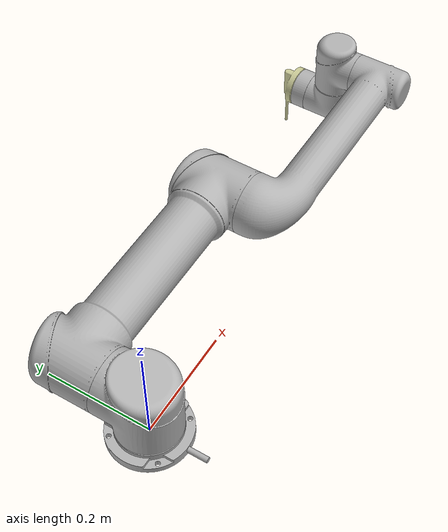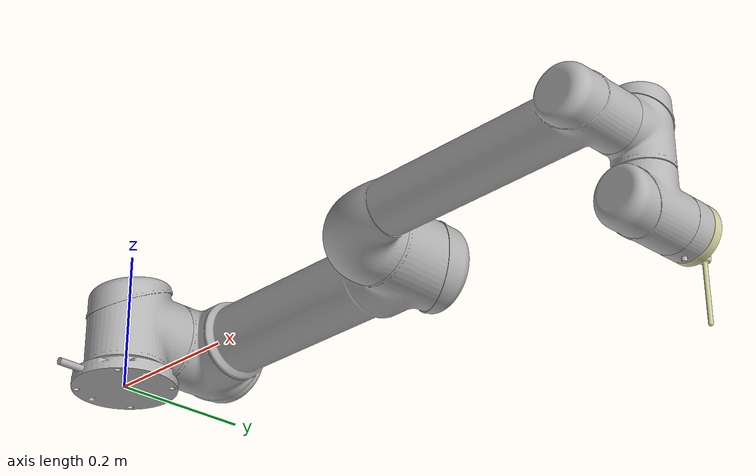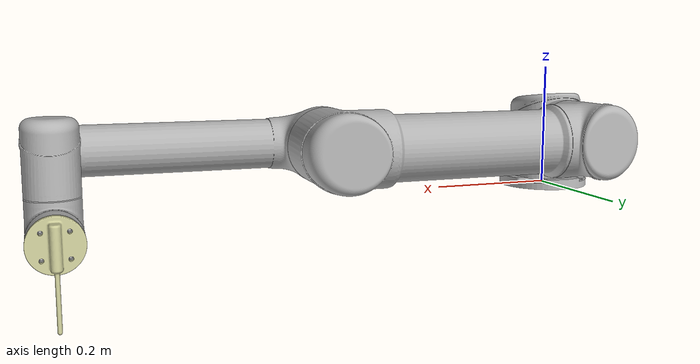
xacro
<?xml version="1.0"?>
<robot xmlns:xacro="http://www.ros.org/wiki/xacro"
       name="ur5_demo" >

  <xacro:property name="PI" value="3.14159265359"/>
  <xacro:property name="flange_radius" value="0.04"/>
  <xacro:property name="flange_offset" value="0.08"/>
  <xacro:property name="tool_tip_width" value="0.005"/>
  <xacro:property name="tool_tip_length" value="0.08"/>
  <xacro:property name="tool_extent_width" value="0.04"/>
  <xacro:property name="tool_extent_length" value="0.02"/>
  <xacro:property name="tool_body_width" value="0.04"/>
  <xacro:property name="tool_body_length" value="0.06"/>
  <xacro:property name="tool_length" value="${0.5*tool_body_length + tool_tip_length}"/>

  <!-- common stuff -->
  <xacro:include filename="$(find ur_description)/urdf/gazebo.urdf.xacro" />

  <!-- ur5 -->
  <xacro:include filename="$(find ur5_demo_support)/urdf/ur5.urdf.xacro" />

  <!-- arm -->
  <xacro:ur5_robot prefix="" joint_limited="true"/>

  <link name="world" />

  <joint name="world_joint" type="fixed">
    <parent link="world" />
    <child link = "base_link" />
    <origin xyz="0.0 0.0 0.0" rpy="0.0 0.0 0.0" />
  </joint>

  <!-- defining tool -->

  <link name="tool">
    <visual>
      <origin xyz="0.0 -0.02 -0.11" rpy="0 0 ${0.5*PI}"/>
      <geometry>
        <mesh filename="package://ur5_demo_support/meshes/stylus_tool.stl"/>
      </geometry>
      <material name="yellow">
        <color rgba="0.8 0.8 0.6 1"/>
      </material>
    </visual>

    <collision>
      <origin xyz="0 0 ${- tool_tip_length - 0.5*tool_body_length}" rpy="0 0 0"/>
      <geometry>
        <box size="${tool_body_width} ${tool_body_width} ${tool_body_length}"/>
      </geometry>
      <material name="yellow">
        <color rgba="1 1 0 1"/>
      </material>
    </collision>
    <collision>
      <origin xyz="0 ${-0.5*tool_extent_length} ${-tool_tip_length - 0.5*tool_body_length}" rpy="${-0.5*PI} 0 0"/>
      <geometry>
        <cylinder radius="${0.5*tool_extent_width}" length="${tool_extent_length}"/>
      </geometry>
      <material name="yellow">
        <color rgba="1 1 0 1"/>
      </material>
    </collision>
    <collision>
      <origin xyz="0 0 ${-0.5 * tool_tip_length}" rpy="0 0 0"/>
      <geometry>
        <cylinder radius="${tool_tip_width}" length="${tool_tip_length}"/>
      </geometry>
      <material name="yellow">
        <color rgba="1 1 0 1"/>
      </material>
    </collision>

  </link>

  <joint name="flange_to_tool" type="fixed">
    <parent link="ee_link"/>
    <child link="tool"/>
    <origin xyz="${tool_extent_length} 0 ${tool_length}" rpy="0 0 ${-0.5*PI}"/>
  </joint>

</robot>

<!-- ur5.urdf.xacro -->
<robot xmlns:xacro="http://www.ros.org/wiki/xacro">

  <xacro:include filename="$(find ur_description)/urdf/ur5.transmission.xacro" />
  <xacro:include filename="$(find ur_description)/urdf/ur5.gazebo.xacro" />

  <property name="pi" value="3.14159265" />

  <!-- Inertia parameters -->
  <property name="base_mass" value="4.0" />  <!-- This mass might be incorrect -->
  <property name="shoulder_mass" value="3.7000" />
  <property name="upper_arm_mass" value="8.3930" />
  <property name="forearm_mass" value="2.2750" />
  <property name="wrist_1_mass" value="1.2190" />
  <property name="wrist_2_mass" value="1.2190" />
  <property name="wrist_3_mass" value="0.1879" />

  <property name="shoulder_cog" value="0.0 0.00193 -0.02561" />
  <property name="upper_arm_cog" value="0.0 -0.024201 0.2125" />
  <property name="forearm_cog" value="0.0 0.0265 0.11993" />
  <property name="wrist_1_cog" value="0.0 0.110949 0.01634" />
  <property name="wrist_2_cog" value="0.0 0.0018 0.11099" />
  <property name="wrist_3_cog" value="0.0 0.001159 0.0" />

  <!-- Kinematic model -->
  <!-- Properties from urcontrol.conf -->
  <property name="ur5_d1" value="0.089159" />
  <property name="ur5_a2" value="-0.42500" />
  <property name="ur5_a3" value="-0.39225" />
  <property name="ur5_d4" value="0.10915" />
  <property name="ur5_d5" value="0.09465" />
  <property name="ur5_d6" value="0.0823" />

  <!-- Arbitrary offsets for shoulder/elbow joints -->
  <property name="shoulder_offset" value="0.13585" />  <!-- measured from model -->
  <property name="elbow_offset" value="-0.1197" /> <!-- measured from model -->

  <!-- link lengths used in model -->
  <property name="shoulder_height" value="${ur5_d1}" />
  <property name="upper_arm_length" value="${-ur5_a2}" />
  <property name="forearm_length" value="${-ur5_a3}" />
  <property name="wrist_1_length" value="${ur5_d4 - elbow_offset - shoulder_offset}" />
  <property name="wrist_2_length" value="${ur5_d5}" />
  <property name="wrist_3_length" value="${ur5_d6}" />
  <!--property name="shoulder_height" value="0.089159" /-->
  <!--property name="shoulder_offset" value="0.13585" /-->  <!-- shoulder_offset - elbow_offset + wrist_1_length = 0.10915 -->
  <!--property name="upper_arm_length" value="0.42500" /-->
  <!--property name="elbow_offset" value="0.1197" /-->       <!-- CAD measured -->
  <!--property name="forearm_length" value="0.39225" /-->
  <!--property name="wrist_1_length" value="0.093" /-->     <!-- CAD measured -->
  <!--property name="wrist_2_length" value="0.09465" /-->   <!-- In CAD this distance is 0.930, but in the spec it is 0.09465 -->
  <!--property name="wrist_3_length" value="0.0823" /-->

  <property name="shoulder_radius" value="0.060" />   <!-- manually measured -->
  <property name="upper_arm_radius" value="0.054" />  <!-- manually measured -->
  <property name="elbow_radius" value="0.060" />      <!-- manually measured -->
  <property name="forearm_radius" value="0.040" />    <!-- manually measured -->
  <property name="wrist_radius" value="0.045" />      <!-- manually measured -->

  <xacro:macro name="cylinder_inertial" params="radius length mass *origin">
    <inertial>
      <mass value="${mass}" />
      <insert_block name="origin" />
      <inertia ixx="${0.0833333 * mass * (3 * radius * radius + length * length)}" ixy="0.0" ixz="0.0"
        iyy="${0.0833333 * mass * (3 * radius * radius + length * length)}" iyz="0.0"
        izz="${0.5 * mass * radius * radius}" />
    </inertial>
  </xacro:macro>

  <xacro:macro name="ur5_robot" params="prefix joint_limited">

    <link name="${prefix}base_link" >
      <visual>
        <geometry>
          <mesh filename="package://ur_description/meshes/ur5/visual/Base.dae" />
        </geometry>
        <material name="LightGrey">
          <color rgba="0.7 0.7 0.7 1.0"/>
        </material>
      </visual>
      <collision>
        <geometry>
          <mesh filename="package://ur_description/meshes/ur5/collision/base.stl" />
        </geometry>
      </collision>
      <xacro:cylinder_inertial radius="0.06" length="0.05" mass="${base_mass}">
        <origin xyz="0.0 0.0 0.0" rpy="0 0 0" />
      </xacro:cylinder_inertial>
    </link>

    <joint name="${prefix}shoulder_pan_joint" type="revolute">
      <parent link="${prefix}base_link" />
      <child link = "${prefix}shoulder_link" />
      <origin xyz="0.0 0.0 ${shoulder_height}" rpy="0.0 0.0 0.0" />
      <axis xyz="0 0 1" />
      <xacro:unless value="${joint_limited}">
        <limit lower="${-2.0 * pi}" upper="${2.0 * pi}" effort="150.0" velocity="3.15"/>
      </xacro:unless>
      <xacro:if value="${joint_limited}">
        <limit lower="${-pi}" upper="${pi}" effort="150.0" velocity="3.15"/>
      </xacro:if>
      <dynamics damping="0.0" friction="0.0"/>
    </joint>

    <link name="${prefix}shoulder_link">
      <visual>
        <geometry>
          <mesh filename="package://ur_description/meshes/ur5/visual/Shoulder.dae" />
        </geometry>
        <material name="LightGrey">
          <color rgba="0.7 0.7 0.7 1.0"/>
        </material>
      </visual>
      <collision>
        <geometry>
          <mesh filename="package://ur_description/meshes/ur5/collision/shoulder.stl" />
        </geometry>
      </collision>
      <xacro:cylinder_inertial radius="0.06" length="0.15" mass="${shoulder_mass}">
        <origin xyz="0.0 0.0 0.0" rpy="0 0 0" />
      </xacro:cylinder_inertial>
    </link>

    <joint name="${prefix}shoulder_lift_joint" type="revolute">
      <parent link="${prefix}shoulder_link" />
      <child link = "${prefix}upper_arm_link" />
      <origin xyz="0.0 ${shoulder_offset} 0.0" rpy="0.0 ${pi / 2.0} 0.0" />
      <axis xyz="0 1 0" />
      <xacro:unless value="${joint_limited}">
        <limit lower="${-2.0 * pi}" upper="${2.0 * pi}" effort="150.0" velocity="3.15"/>
      </xacro:unless>
      <xacro:if value="${joint_limited}">
        <limit lower="${-0.6*pi}" upper="${0.1*pi}" effort="150.0" velocity="3.15"/>
      </xacro:if>
      <dynamics damping="0.0" friction="0.0"/>
    </joint>

    <link name="${prefix}upper_arm_link">
      <visual>
        <geometry>
          <mesh filename="package://ur_description/meshes/ur5/visual/UpperArm.dae" />
        </geometry>
        <material name="LightGrey">
          <color rgba="0.7 0.7 0.7 1.0"/>
        </material>
      </visual>
      <collision>
        <geometry>
          <mesh filename="package://ur_description/meshes/ur5/collision/upper_arm.stl" />
        </geometry>
      </collision>
      <xacro:cylinder_inertial radius="0.06" length="0.56" mass="${upper_arm_mass}">
        <origin xyz="0.0 0.0 0.28" rpy="0 0 0" />
      </xacro:cylinder_inertial>
    </link>

    <joint name="${prefix}elbow_joint" type="revolute">
      <parent link="${prefix}upper_arm_link" />
      <child link = "${prefix}forearm_link" />
      <origin xyz="0.0 ${elbow_offset} ${upper_arm_length}" rpy="0.0 0.0 0.0" />
      <axis xyz="0 1 0" />
      <xacro:unless value="${joint_limited}">
        <limit lower="${-2.0 * pi}" upper="${2.0 * pi}" effort="150.0" velocity="3.15"/>
      </xacro:unless>
      <xacro:if value="${joint_limited}">
        <limit lower="${-0.08*pi}" upper="${pi}" effort="150.0" velocity="3.15"/>
      </xacro:if>
      <dynamics damping="0.0" friction="0.0"/>
    </joint>

    <link name="${prefix}forearm_link">
      <visual>
        <geometry>
          <mesh filename="package://ur_description/meshes/ur5/visual/Forearm.dae" />
        </geometry>
        <material name="LightGrey">
          <color rgba="0.7 0.7 0.7 1.0"/>
        </material>
      </visual>
      <collision>
        <geometry>
          <mesh filename="package://ur_description/meshes/ur5/collision/forearm.stl" />
        </geometry>
      </collision>
      <xacro:cylinder_inertial radius="0.06" length="0.5" mass="${forearm_mass}">
        <origin xyz="0.0 0.0 0.25" rpy="0 0 0" />
      </xacro:cylinder_inertial>
    </link>

    <joint name="${prefix}wrist_1_joint" type="revolute">
      <parent link="${prefix}forearm_link" />
      <child link = "${prefix}wrist_1_link" />
      <origin xyz="0.0 0.0 ${forearm_length}" rpy="0.0 ${pi / 2.0} 0.0" />
      <axis xyz="0 1 0" />
      <xacro:unless value="${joint_limited}">
        <limit lower="${-2.0 * pi}" upper="${2.0 * pi}" effort="28.0" velocity="3.2"/>
      </xacro:unless>
      <xacro:if value="${joint_limited}">
        <limit lower="${-pi}" upper="${pi}" effort="28.0" velocity="3.2"/>
      </xacro:if>
      <dynamics damping="0.0" friction="0.0"/>
    </joint>

    <link name="${prefix}wrist_1_link">
      <visual>
        <geometry>
          <mesh filename="package://ur_description/meshes/ur5/visual/Wrist1.dae" />
        </geometry>
        <material name="LightGrey">
          <color rgba="0.7 0.7 0.7 1.0"/>
        </material>
      </visual>
      <collision>
        <geometry>
          <mesh filename="package://ur_description/meshes/ur5/collision/wrist_1.stl" />
        </geometry>
      </collision>
      <xacro:cylinder_inertial radius="0.6" length="0.12" mass="${wrist_1_mass}">
        <origin xyz="0.0 0.0 0.0" rpy="0 0 0" />
      </xacro:cylinder_inertial>
    </link>

    <joint name="${prefix}wrist_2_joint" type="revolute">
      <parent link="${prefix}wrist_1_link" />
      <child link = "${prefix}wrist_2_link" />
      <origin xyz="0.0 ${wrist_1_length} 0.0" rpy="0.0 0.0 0.0" />
      <axis xyz="0 0 1" />
      <xacro:unless value="${joint_limited}">
        <limit lower="${-2.0 * pi}" upper="${2.0 * pi}" effort="28.0" velocity="3.2"/>
      </xacro:unless>
      <xacro:if value="${joint_limited}">
        <limit lower="${-pi}" upper="${pi}" effort="28.0" velocity="3.2"/>
      </xacro:if>
      <dynamics damping="0.0" friction="0.0"/>
    </joint>

    <link name="${prefix}wrist_2_link">
      <visual>
        <geometry>
          <mesh filename="package://ur_description/meshes/ur5/visual/Wrist2.dae" />
        </geometry>
        <material name="LightGrey">
          <color rgba="0.7 0.7 0.7 1.0"/>
        </material>
      </visual>
      <collision>
        <geometry>
          <mesh filename="package://ur_description/meshes/ur5/collision/wrist_2.stl" />
        </geometry>
      </collision>
      <xacro:cylinder_inertial radius="0.6" length="0.12" mass="${wrist_2_mass}">
        <origin xyz="0.0 0.0 0.0" rpy="0 0 0" />
      </xacro:cylinder_inertial>
    </link>

    <joint name="${prefix}wrist_3_joint" type="revolute">
      <parent link="${prefix}wrist_2_link" />
      <child link = "${prefix}wrist_3_link" />
      <origin xyz="0.0 0.0 ${wrist_2_length}" rpy="0.0 0.0 0.0" />
      <axis xyz="0 1 0" />
      <xacro:unless value="${joint_limited}">
        <limit lower="${-2.0 * pi}" upper="${2.0 * pi}" effort="28.0" velocity="3.2"/>
      </xacro:unless>
      <xacro:if value="${joint_limited}">
        <limit lower="${-pi}" upper="${pi}" effort="28.0" velocity="3.2"/>
      </xacro:if>
      <dynamics damping="0.0" friction="0.0"/>
    </joint>

    <link name="${prefix}wrist_3_link">
      <visual>
        <geometry>
          <mesh filename="package://ur_description/meshes/ur5/visual/Wrist3.dae" />
        </geometry>
        <material name="LightGrey">
          <color rgba="0.7 0.7 0.7 1.0"/>
        </material>
      </visual>
      <collision>
        <geometry>
          <mesh filename="package://ur_description/meshes/ur5/collision/wrist_3.stl" />
        </geometry>
      </collision>
      <xacro:cylinder_inertial radius="0.6" length="0.12" mass="${wrist_3_mass}">
        <origin xyz="0.0 0.0 0.0" rpy="0 0 0" />
      </xacro:cylinder_inertial>
    </link>

    <joint name="${prefix}ee_fixed_joint" type="fixed">
      <parent link="${prefix}wrist_3_link" />
      <child link = "${prefix}ee_link" />
      <origin xyz="0.0 ${wrist_3_length} 0.0" rpy="0.0 0.0 ${pi/2.0}" />
    </joint>

    <link name="${prefix}ee_link">
      <collision>
        <geometry>
          <box size="0.01 0.01 0.01"/>
        </geometry>
        <origin rpy="0 0 0" xyz="-0.01 0 0"/>
      </collision>
    </link>

    <xacro:ur5_arm_transmission prefix="${prefix}" />
    <xacro:ur5_arm_gazebo prefix="${prefix}" />

  </xacro:macro>
</robot>
